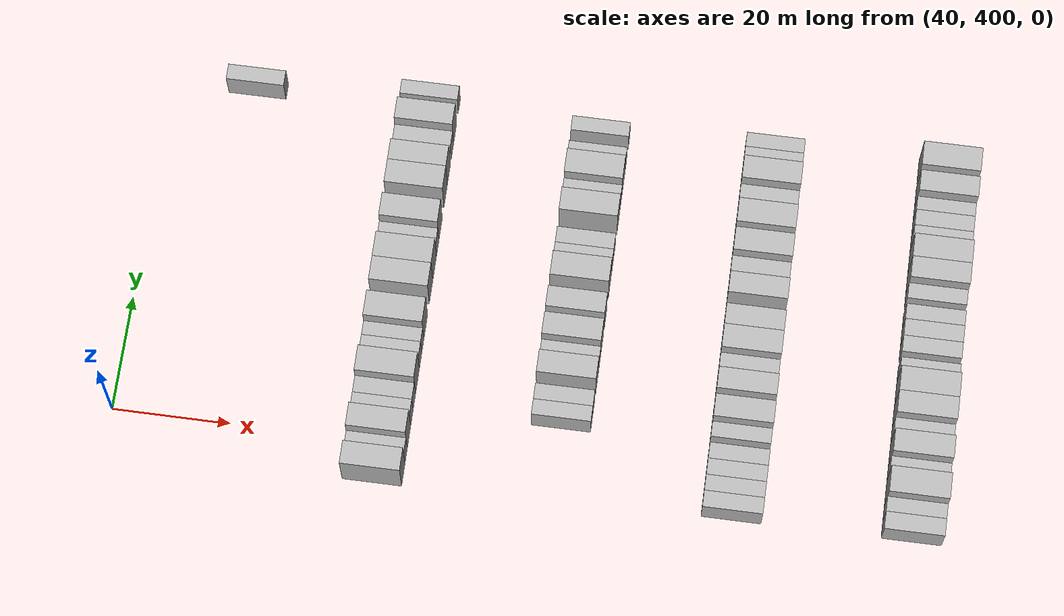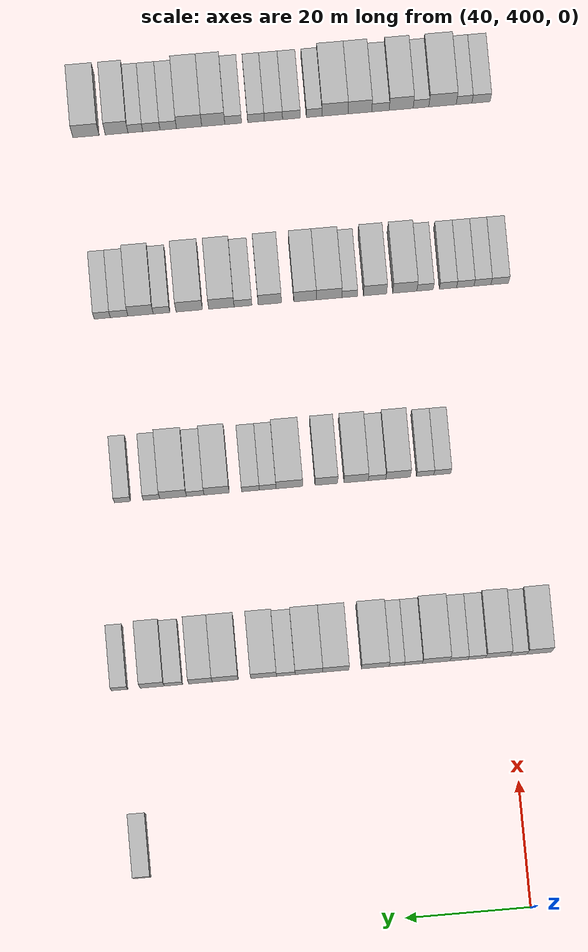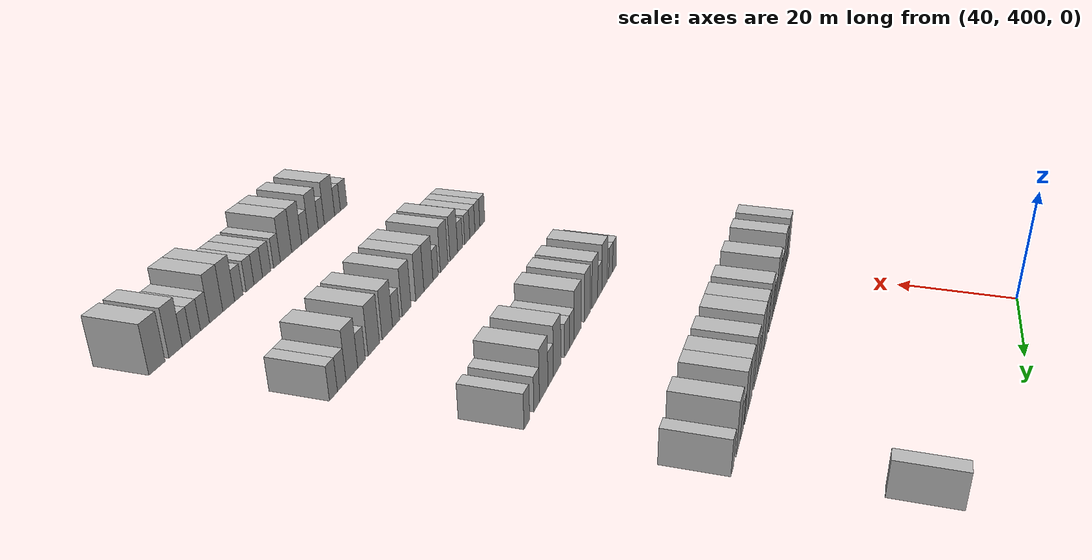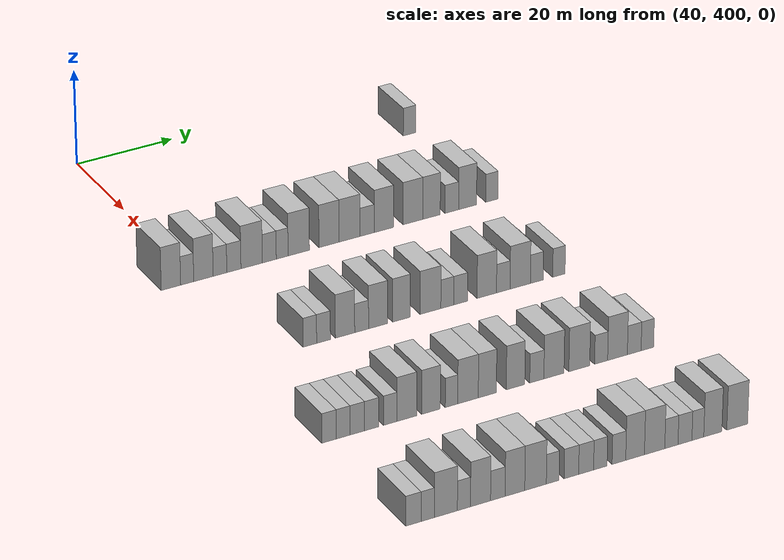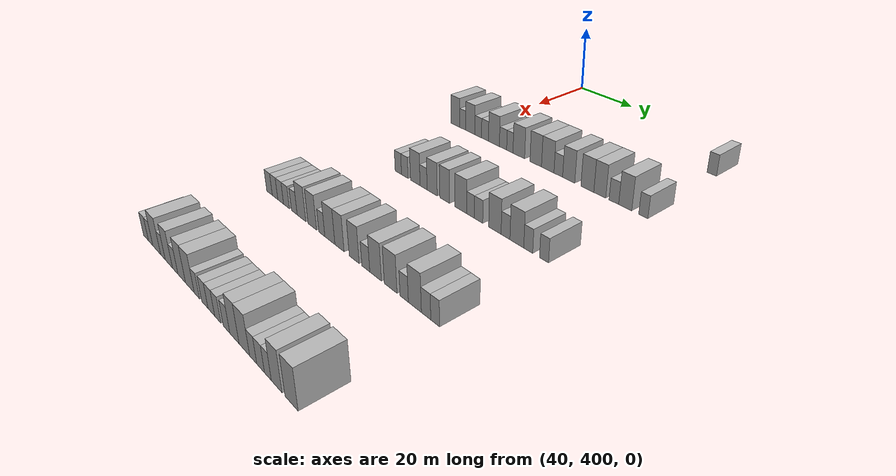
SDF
<sdf version="1.6">
 <world name="default">
  <model name="building_453">
   <static>1</static>
   <pose>55.0000 460.8837 0 0.000000 0.000000 0.000000</pose>
   <link name="link">
    <pose>0 0 3.00 0 0 0</pose>
    <collision name="collision"><geometry><box><size>10.0000 2.7528 6.0000</size></box></geometry></collision>
    <visual name="visual">
     <cast_shadows>0</cast_shadows>
     <geometry><box><size>10.0000 2.7528 6.0000</size></box></geometry>
     <material>
      <script>
       <uri>model://HANNAS_wall/materials/scripts</uri>
       <uri>model://HANNAS_wall/materials/textures</uri>
       <name>vrc/HANNAS_wall</name>
      </script>
     </material>
    </visual>
   </link>
  </model>
  <model name="building_653">
   <static>1</static>
   <pose>85.0000 394.8878 0 0.000000 0.000000 0.000000</pose>
   <link name="link">
    <pose>0 0 4.50 0 0 0</pose>
    <collision name="collision"><geometry><box><size>10.0000 3.9423 9.0000</size></box></geometry></collision>
    <visual name="visual">
     <cast_shadows>0</cast_shadows>
     <geometry><box><size>10.0000 3.9423 9.0000</size></box></geometry>
     <material>
      <script>
       <uri>model://HANNAS_wall/materials/scripts</uri>
       <uri>model://HANNAS_wall/materials/textures</uri>
       <name>vrc/HANNAS_wall</name>
      </script>
     </material>
    </visual>
   </link>
  </model>
  <model name="building_654">
   <static>1</static>
   <pose>85.0000 398.1920 0 0.000000 0.000000 0.000000</pose>
   <link name="link">
    <pose>0 0 3.00 0 0 0</pose>
    <collision name="collision"><geometry><box><size>10.0000 2.6660 6.0000</size></box></geometry></collision>
    <visual name="visual">
     <cast_shadows>0</cast_shadows>
     <geometry><box><size>10.0000 2.6660 6.0000</size></box></geometry>
     <material>
      <script>
       <uri>model://HANNAS_wall/materials/scripts</uri>
       <uri>model://HANNAS_wall/materials/textures</uri>
       <name>vrc/HANNAS_wall</name>
      </script>
     </material>
    </visual>
   </link>
  </model>
  <model name="building_655">
   <static>1</static>
   <pose>85.0000 401.5129 0 0.000000 0.000000 0.000000</pose>
   <link name="link">
    <pose>0 0 4.50 0 0 0</pose>
    <collision name="collision"><geometry><box><size>10.0000 3.9759 9.0000</size></box></geometry></collision>
    <visual name="visual">
     <cast_shadows>0</cast_shadows>
     <geometry><box><size>10.0000 3.9759 9.0000</size></box></geometry>
     <material>
      <script>
       <uri>model://HANNAS_wall/materials/scripts</uri>
       <uri>model://HANNAS_wall/materials/textures</uri>
       <name>vrc/HANNAS_wall</name>
      </script>
     </material>
    </visual>
   </link>
  </model>
  <model name="building_656">
   <static>1</static>
   <pose>85.0000 404.8990 0 0.000000 0.000000 0.000000</pose>
   <link name="link">
    <pose>0 0 3.00 0 0 0</pose>
    <collision name="collision"><geometry><box><size>10.0000 2.7963 6.0000</size></box></geometry></collision>
    <visual name="visual">
     <cast_shadows>0</cast_shadows>
     <geometry><box><size>10.0000 2.7963 6.0000</size></box></geometry>
     <material>
      <script>
       <uri>model://HANNAS_wall/materials/scripts</uri>
       <uri>model://HANNAS_wall/materials/textures</uri>
       <name>vrc/HANNAS_wall</name>
      </script>
     </material>
    </visual>
   </link>
  </model>
  <model name="building_657">
   <static>1</static>
   <pose>85.0000 407.7478 0 0.000000 0.000000 0.000000</pose>
   <link name="link">
    <pose>0 0 3.00 0 0 0</pose>
    <collision name="collision"><geometry><box><size>10.0000 2.9014 6.0000</size></box></geometry></collision>
    <visual name="visual">
     <cast_shadows>0</cast_shadows>
     <geometry><box><size>10.0000 2.9014 6.0000</size></box></geometry>
     <material>
      <script>
       <uri>model://HANNAS_wall/materials/scripts</uri>
       <uri>model://HANNAS_wall/materials/textures</uri>
       <name>vrc/HANNAS_wall</name>
      </script>
     </material>
    </visual>
   </link>
  </model>
  <model name="building_658">
   <static>1</static>
   <pose>85.0000 411.4063 0 0.000000 0.000000 0.000000</pose>
   <link name="link">
    <pose>0 0 4.50 0 0 0</pose>
    <collision name="collision"><geometry><box><size>10.0000 4.4156 9.0000</size></box></geometry></collision>
    <visual name="visual">
     <cast_shadows>0</cast_shadows>
     <geometry><box><size>10.0000 4.4156 9.0000</size></box></geometry>
     <material>
      <script>
       <uri>model://HANNAS_wall/materials/scripts</uri>
       <uri>model://HANNAS_wall/materials/textures</uri>
       <name>vrc/HANNAS_wall</name>
      </script>
     </material>
    </visual>
   </link>
  </model>
  <model name="building_659">
   <static>1</static>
   <pose>85.0000 415.0529 0 0.000000 0.000000 0.000000</pose>
   <link name="link">
    <pose>0 0 3.00 0 0 0</pose>
    <collision name="collision"><geometry><box><size>10.0000 2.8777 6.0000</size></box></geometry></collision>
    <visual name="visual">
     <cast_shadows>0</cast_shadows>
     <geometry><box><size>10.0000 2.8777 6.0000</size></box></geometry>
     <material>
      <script>
       <uri>model://HANNAS_wall/materials/scripts</uri>
       <uri>model://HANNAS_wall/materials/textures</uri>
       <name>vrc/HANNAS_wall</name>
      </script>
     </material>
    </visual>
   </link>
  </model>
  <model name="building_660">
   <static>1</static>
   <pose>85.0000 417.7187 0 0.000000 0.000000 0.000000</pose>
   <link name="link">
    <pose>0 0 3.00 0 0 0</pose>
    <collision name="collision"><geometry><box><size>10.0000 2.4538 6.0000</size></box></geometry></collision>
    <visual name="visual">
     <cast_shadows>0</cast_shadows>
     <geometry><box><size>10.0000 2.4538 6.0000</size></box></geometry>
     <material>
      <script>
       <uri>model://HANNAS_wall/materials/scripts</uri>
       <uri>model://HANNAS_wall/materials/textures</uri>
       <name>vrc/HANNAS_wall</name>
      </script>
     </material>
    </visual>
   </link>
  </model>
  <model name="building_661">
   <static>1</static>
   <pose>85.0000 421.1607 0 0.000000 0.000000 0.000000</pose>
   <link name="link">
    <pose>0 0 4.50 0 0 0</pose>
    <collision name="collision"><geometry><box><size>10.0000 4.4301 9.0000</size></box></geometry></collision>
    <visual name="visual">
     <cast_shadows>0</cast_shadows>
     <geometry><box><size>10.0000 4.4301 9.0000</size></box></geometry>
     <material>
      <script>
       <uri>model://HANNAS_wall/materials/scripts</uri>
       <uri>model://HANNAS_wall/materials/textures</uri>
       <name>vrc/HANNAS_wall</name>
      </script>
     </material>
    </visual>
   </link>
  </model>
  <model name="building_662">
   <static>1</static>
   <pose>85.0000 427.4719 0 0.000000 0.000000 0.000000</pose>
   <link name="link">
    <pose>0 0 4.50 0 0 0</pose>
    <collision name="collision"><geometry><box><size>10.0000 4.1924 9.0000</size></box></geometry></collision>
    <visual name="visual">
     <cast_shadows>0</cast_shadows>
     <geometry><box><size>10.0000 4.1924 9.0000</size></box></geometry>
     <material>
      <script>
       <uri>model://HANNAS_wall/materials/scripts</uri>
       <uri>model://HANNAS_wall/materials/textures</uri>
       <name>vrc/HANNAS_wall</name>
      </script>
     </material>
    </visual>
   </link>
  </model>
  <model name="building_663">
   <static>1</static>
   <pose>85.0000 431.7773 0 0.000000 0.000000 0.000000</pose>
   <link name="link">
    <pose>0 0 4.50 0 0 0</pose>
    <collision name="collision"><geometry><box><size>10.0000 4.4183 9.0000</size></box></geometry></collision>
    <visual name="visual">
     <cast_shadows>0</cast_shadows>
     <geometry><box><size>10.0000 4.4183 9.0000</size></box></geometry>
     <material>
      <script>
       <uri>model://HANNAS_wall/materials/scripts</uri>
       <uri>model://HANNAS_wall/materials/textures</uri>
       <name>vrc/HANNAS_wall</name>
      </script>
     </material>
    </visual>
   </link>
  </model>
  <model name="building_664">
   <static>1</static>
   <pose>85.0000 435.4705 0 0.000000 0.000000 0.000000</pose>
   <link name="link">
    <pose>0 0 3.00 0 0 0</pose>
    <collision name="collision"><geometry><box><size>10.0000 2.9681 6.0000</size></box></geometry></collision>
    <visual name="visual">
     <cast_shadows>0</cast_shadows>
     <geometry><box><size>10.0000 2.9681 6.0000</size></box></geometry>
     <material>
      <script>
       <uri>model://HANNAS_wall/materials/scripts</uri>
       <uri>model://HANNAS_wall/materials/textures</uri>
       <name>vrc/HANNAS_wall</name>
      </script>
     </material>
    </visual>
   </link>
  </model>
  <model name="building_665">
   <static>1</static>
   <pose>85.0000 439.0048 0 0.000000 0.000000 0.000000</pose>
   <link name="link">
    <pose>0 0 4.50 0 0 0</pose>
    <collision name="collision"><geometry><box><size>10.0000 4.1005 9.0000</size></box></geometry></collision>
    <visual name="visual">
     <cast_shadows>0</cast_shadows>
     <geometry><box><size>10.0000 4.1005 9.0000</size></box></geometry>
     <material>
      <script>
       <uri>model://HANNAS_wall/materials/scripts</uri>
       <uri>model://HANNAS_wall/materials/textures</uri>
       <name>vrc/HANNAS_wall</name>
      </script>
     </material>
    </visual>
   </link>
  </model>
  <model name="building_666">
   <static>1</static>
   <pose>85.0000 445.1371 0 0.000000 0.000000 0.000000</pose>
   <link name="link">
    <pose>0 0 4.50 0 0 0</pose>
    <collision name="collision"><geometry><box><size>10.0000 4.1641 9.0000</size></box></geometry></collision>
    <visual name="visual">
     <cast_shadows>0</cast_shadows>
     <geometry><box><size>10.0000 4.1641 9.0000</size></box></geometry>
     <material>
      <script>
       <uri>model://HANNAS_wall/materials/scripts</uri>
       <uri>model://HANNAS_wall/materials/textures</uri>
       <name>vrc/HANNAS_wall</name>
      </script>
     </material>
    </visual>
   </link>
  </model>
  <model name="building_667">
   <static>1</static>
   <pose>85.0000 449.0859 0 0.000000 0.000000 0.000000</pose>
   <link name="link">
    <pose>0 0 4.50 0 0 0</pose>
    <collision name="collision"><geometry><box><size>10.0000 3.7334 9.0000</size></box></geometry></collision>
    <visual name="visual">
     <cast_shadows>0</cast_shadows>
     <geometry><box><size>10.0000 3.7334 9.0000</size></box></geometry>
     <material>
      <script>
       <uri>model://HANNAS_wall/materials/scripts</uri>
       <uri>model://HANNAS_wall/materials/textures</uri>
       <name>vrc/HANNAS_wall</name>
      </script>
     </material>
    </visual>
   </link>
  </model>
  <model name="building_668">
   <static>1</static>
   <pose>85.0000 453.4072 0 0.000000 0.000000 0.000000</pose>
   <link name="link">
    <pose>0 0 3.00 0 0 0</pose>
    <collision name="collision"><geometry><box><size>10.0000 2.9094 6.0000</size></box></geometry></collision>
    <visual name="visual">
     <cast_shadows>0</cast_shadows>
     <geometry><box><size>10.0000 2.9094 6.0000</size></box></geometry>
     <material>
      <script>
       <uri>model://HANNAS_wall/materials/scripts</uri>
       <uri>model://HANNAS_wall/materials/textures</uri>
       <name>vrc/HANNAS_wall</name>
      </script>
     </material>
    </visual>
   </link>
  </model>
  <model name="building_669">
   <static>1</static>
   <pose>85.0000 456.7926 0 0.000000 0.000000 0.000000</pose>
   <link name="link">
    <pose>0 0 4.50 0 0 0</pose>
    <collision name="collision"><geometry><box><size>10.0000 3.8614 9.0000</size></box></geometry></collision>
    <visual name="visual">
     <cast_shadows>0</cast_shadows>
     <geometry><box><size>10.0000 3.8614 9.0000</size></box></geometry>
     <material>
      <script>
       <uri>model://HANNAS_wall/materials/scripts</uri>
       <uri>model://HANNAS_wall/materials/textures</uri>
       <name>vrc/HANNAS_wall</name>
      </script>
     </material>
    </visual>
   </link>
  </model>
  <model name="building_670">
   <static>1</static>
   <pose>85.0000 462.0201 0 0.000000 0.000000 0.000000</pose>
   <link name="link">
    <pose>0 0 3.00 0 0 0</pose>
    <collision name="collision"><geometry><box><size>10.0000 2.5936 6.0000</size></box></geometry></collision>
    <visual name="visual">
     <cast_shadows>0</cast_shadows>
     <geometry><box><size>10.0000 2.5936 6.0000</size></box></geometry>
     <material>
      <script>
       <uri>model://HANNAS_wall/materials/scripts</uri>
       <uri>model://HANNAS_wall/materials/textures</uri>
       <name>vrc/HANNAS_wall</name>
      </script>
     </material>
    </visual>
   </link>
  </model>
  <model name="building_879">
   <static>1</static>
   <pose>115.0000 407.6652 0 0.000000 0.000000 0.000000</pose>
   <link name="link">
    <pose>0 0 3.00 0 0 0</pose>
    <collision name="collision"><geometry><box><size>10.0000 2.7222 6.0000</size></box></geometry></collision>
    <visual name="visual">
     <cast_shadows>0</cast_shadows>
     <geometry><box><size>10.0000 2.7222 6.0000</size></box></geometry>
     <material>
      <script>
       <uri>model://HANNAS_wall/materials/scripts</uri>
       <uri>model://HANNAS_wall/materials/textures</uri>
       <name>vrc/HANNAS_wall</name>
      </script>
     </material>
    </visual>
   </link>
  </model>
  <model name="building_880">
   <static>1</static>
   <pose>115.0000 410.4216 0 0.000000 0.000000 0.000000</pose>
   <link name="link">
    <pose>0 0 3.00 0 0 0</pose>
    <collision name="collision"><geometry><box><size>10.0000 2.7905 6.0000</size></box></geometry></collision>
    <visual name="visual">
     <cast_shadows>0</cast_shadows>
     <geometry><box><size>10.0000 2.7905 6.0000</size></box></geometry>
     <material>
      <script>
       <uri>model://HANNAS_wall/materials/scripts</uri>
       <uri>model://HANNAS_wall/materials/textures</uri>
       <name>vrc/HANNAS_wall</name>
      </script>
     </material>
    </visual>
   </link>
  </model>
  <model name="building_881">
   <static>1</static>
   <pose>115.0000 414.7831 0 0.000000 0.000000 0.000000</pose>
   <link name="link">
    <pose>0 0 4.50 0 0 0</pose>
    <collision name="collision"><geometry><box><size>10.0000 3.9324 9.0000</size></box></geometry></collision>
    <visual name="visual">
     <cast_shadows>0</cast_shadows>
     <geometry><box><size>10.0000 3.9324 9.0000</size></box></geometry>
     <material>
      <script>
       <uri>model://HANNAS_wall/materials/scripts</uri>
       <uri>model://HANNAS_wall/materials/textures</uri>
       <name>vrc/HANNAS_wall</name>
      </script>
     </material>
    </visual>
   </link>
  </model>
  <model name="building_882">
   <static>1</static>
   <pose>115.0000 418.1613 0 0.000000 0.000000 0.000000</pose>
   <link name="link">
    <pose>0 0 3.00 0 0 0</pose>
    <collision name="collision"><geometry><box><size>10.0000 2.8240 6.0000</size></box></geometry></collision>
    <visual name="visual">
     <cast_shadows>0</cast_shadows>
     <geometry><box><size>10.0000 2.8240 6.0000</size></box></geometry>
     <material>
      <script>
       <uri>model://HANNAS_wall/materials/scripts</uri>
       <uri>model://HANNAS_wall/materials/textures</uri>
       <name>vrc/HANNAS_wall</name>
      </script>
     </material>
    </visual>
   </link>
  </model>
  <model name="building_883">
   <static>1</static>
   <pose>115.0000 421.5358 0 0.000000 0.000000 0.000000</pose>
   <link name="link">
    <pose>0 0 4.50 0 0 0</pose>
    <collision name="collision"><geometry><box><size>10.0000 3.9251 9.0000</size></box></geometry></collision>
    <visual name="visual">
     <cast_shadows>0</cast_shadows>
     <geometry><box><size>10.0000 3.9251 9.0000</size></box></geometry>
     <material>
      <script>
       <uri>model://HANNAS_wall/materials/scripts</uri>
       <uri>model://HANNAS_wall/materials/textures</uri>
       <name>vrc/HANNAS_wall</name>
      </script>
     </material>
    </visual>
   </link>
  </model>
  <model name="building_884">
   <static>1</static>
   <pose>115.0000 426.3222 0 0.000000 0.000000 0.000000</pose>
   <link name="link">
    <pose>0 0 4.50 0 0 0</pose>
    <collision name="collision"><geometry><box><size>10.0000 3.6477 9.0000</size></box></geometry></collision>
    <visual name="visual">
     <cast_shadows>0</cast_shadows>
     <geometry><box><size>10.0000 3.6477 9.0000</size></box></geometry>
     <material>
      <script>
       <uri>model://HANNAS_wall/materials/scripts</uri>
       <uri>model://HANNAS_wall/materials/textures</uri>
       <name>vrc/HANNAS_wall</name>
      </script>
     </material>
    </visual>
   </link>
  </model>
  <model name="building_885">
   <static>1</static>
   <pose>115.0000 432.2848 0 0.000000 0.000000 0.000000</pose>
   <link name="link">
    <pose>0 0 4.50 0 0 0</pose>
    <collision name="collision"><geometry><box><size>10.0000 4.2775 9.0000</size></box></geometry></collision>
    <visual name="visual">
     <cast_shadows>0</cast_shadows>
     <geometry><box><size>10.0000 4.2775 9.0000</size></box></geometry>
     <material>
      <script>
       <uri>model://HANNAS_wall/materials/scripts</uri>
       <uri>model://HANNAS_wall/materials/textures</uri>
       <name>vrc/HANNAS_wall</name>
      </script>
     </material>
    </visual>
   </link>
  </model>
  <model name="building_886">
   <static>1</static>
   <pose>115.0000 435.7615 0 0.000000 0.000000 0.000000</pose>
   <link name="link">
    <pose>0 0 3.00 0 0 0</pose>
    <collision name="collision"><geometry><box><size>10.0000 2.6759 6.0000</size></box></geometry></collision>
    <visual name="visual">
     <cast_shadows>0</cast_shadows>
     <geometry><box><size>10.0000 2.6759 6.0000</size></box></geometry>
     <material>
      <script>
       <uri>model://HANNAS_wall/materials/scripts</uri>
       <uri>model://HANNAS_wall/materials/textures</uri>
       <name>vrc/HANNAS_wall</name>
      </script>
     </material>
    </visual>
   </link>
  </model>
  <model name="building_887">
   <static>1</static>
   <pose>115.0000 438.5187 0 0.000000 0.000000 0.000000</pose>
   <link name="link">
    <pose>0 0 3.00 0 0 0</pose>
    <collision name="collision"><geometry><box><size>10.0000 2.8385 6.0000</size></box></geometry></collision>
    <visual name="visual">
     <cast_shadows>0</cast_shadows>
     <geometry><box><size>10.0000 2.8385 6.0000</size></box></geometry>
     <material>
      <script>
       <uri>model://HANNAS_wall/materials/scripts</uri>
       <uri>model://HANNAS_wall/materials/textures</uri>
       <name>vrc/HANNAS_wall</name>
      </script>
     </material>
    </visual>
   </link>
  </model>
  <model name="building_888">
   <static>1</static>
   <pose>115.0000 443.9630 0 0.000000 0.000000 0.000000</pose>
   <link name="link">
    <pose>0 0 4.50 0 0 0</pose>
    <collision name="collision"><geometry><box><size>10.0000 4.0502 9.0000</size></box></geometry></collision>
    <visual name="visual">
     <cast_shadows>0</cast_shadows>
     <geometry><box><size>10.0000 4.0502 9.0000</size></box></geometry>
     <material>
      <script>
       <uri>model://HANNAS_wall/materials/scripts</uri>
       <uri>model://HANNAS_wall/materials/textures</uri>
       <name>vrc/HANNAS_wall</name>
      </script>
     </material>
    </visual>
   </link>
  </model>
  <model name="building_889">
   <static>1</static>
   <pose>115.0000 447.4037 0 0.000000 0.000000 0.000000</pose>
   <link name="link">
    <pose>0 0 3.00 0 0 0</pose>
    <collision name="collision"><geometry><box><size>10.0000 2.8311 6.0000</size></box></geometry></collision>
    <visual name="visual">
     <cast_shadows>0</cast_shadows>
     <geometry><box><size>10.0000 2.8311 6.0000</size></box></geometry>
     <material>
      <script>
       <uri>model://HANNAS_wall/materials/scripts</uri>
       <uri>model://HANNAS_wall/materials/textures</uri>
       <name>vrc/HANNAS_wall</name>
      </script>
     </material>
    </visual>
   </link>
  </model>
  <model name="building_890">
   <static>1</static>
   <pose>115.0000 450.9556 0 0.000000 0.000000 0.000000</pose>
   <link name="link">
    <pose>0 0 4.50 0 0 0</pose>
    <collision name="collision"><geometry><box><size>10.0000 4.2727 9.0000</size></box></geometry></collision>
    <visual name="visual">
     <cast_shadows>0</cast_shadows>
     <geometry><box><size>10.0000 4.2727 9.0000</size></box></geometry>
     <material>
      <script>
       <uri>model://HANNAS_wall/materials/scripts</uri>
       <uri>model://HANNAS_wall/materials/textures</uri>
       <name>vrc/HANNAS_wall</name>
      </script>
     </material>
    </visual>
   </link>
  </model>
  <model name="building_891">
   <static>1</static>
   <pose>115.0000 454.4366 0 0.000000 0.000000 0.000000</pose>
   <link name="link">
    <pose>0 0 3.00 0 0 0</pose>
    <collision name="collision"><geometry><box><size>10.0000 2.6893 6.0000</size></box></geometry></collision>
    <visual name="visual">
     <cast_shadows>0</cast_shadows>
     <geometry><box><size>10.0000 2.6893 6.0000</size></box></geometry>
     <material>
      <script>
       <uri>model://HANNAS_wall/materials/scripts</uri>
       <uri>model://HANNAS_wall/materials/textures</uri>
       <name>vrc/HANNAS_wall</name>
      </script>
     </material>
    </visual>
   </link>
  </model>
  <model name="building_892">
   <static>1</static>
   <pose>115.0000 459.0893 0 0.000000 0.000000 0.000000</pose>
   <link name="link">
    <pose>0 0 3.00 0 0 0</pose>
    <collision name="collision"><geometry><box><size>10.0000 2.6162 6.0000</size></box></geometry></collision>
    <visual name="visual">
     <cast_shadows>0</cast_shadows>
     <geometry><box><size>10.0000 2.6162 6.0000</size></box></geometry>
     <material>
      <script>
       <uri>model://HANNAS_wall/materials/scripts</uri>
       <uri>model://HANNAS_wall/materials/textures</uri>
       <name>vrc/HANNAS_wall</name>
      </script>
     </material>
    </visual>
   </link>
  </model>
  <model name="building_1100">
   <static>1</static>
   <pose>145.0000 395.5969 0 0.000000 0.000000 0.000000</pose>
   <link name="link">
    <pose>0 0 3.00 0 0 0</pose>
    <collision name="collision"><geometry><box><size>10.0000 2.8369 6.0000</size></box></geometry></collision>
    <visual name="visual">
     <cast_shadows>0</cast_shadows>
     <geometry><box><size>10.0000 2.8369 6.0000</size></box></geometry>
     <material>
      <script>
       <uri>model://HANNAS_wall/materials/scripts</uri>
       <uri>model://HANNAS_wall/materials/textures</uri>
       <name>vrc/HANNAS_wall</name>
      </script>
     </material>
    </visual>
   </link>
  </model>
  <model name="building_1101">
   <static>1</static>
   <pose>145.0000 398.3902 0 0.000000 0.000000 0.000000</pose>
   <link name="link">
    <pose>0 0 3.00 0 0 0</pose>
    <collision name="collision"><geometry><box><size>10.0000 2.7495 6.0000</size></box></geometry></collision>
    <visual name="visual">
     <cast_shadows>0</cast_shadows>
     <geometry><box><size>10.0000 2.7495 6.0000</size></box></geometry>
     <material>
      <script>
       <uri>model://HANNAS_wall/materials/scripts</uri>
       <uri>model://HANNAS_wall/materials/textures</uri>
       <name>vrc/HANNAS_wall</name>
      </script>
     </material>
    </visual>
   </link>
  </model>
  <model name="building_1102">
   <static>1</static>
   <pose>145.0000 401.1715 0 0.000000 0.000000 0.000000</pose>
   <link name="link">
    <pose>0 0 3.00 0 0 0</pose>
    <collision name="collision"><geometry><box><size>10.0000 2.8131 6.0000</size></box></geometry></collision>
    <visual name="visual">
     <cast_shadows>0</cast_shadows>
     <geometry><box><size>10.0000 2.8131 6.0000</size></box></geometry>
     <material>
      <script>
       <uri>model://HANNAS_wall/materials/scripts</uri>
       <uri>model://HANNAS_wall/materials/textures</uri>
       <name>vrc/HANNAS_wall</name>
      </script>
     </material>
    </visual>
   </link>
  </model>
  <model name="building_1103">
   <static>1</static>
   <pose>145.0000 403.9708 0 0.000000 0.000000 0.000000</pose>
   <link name="link">
    <pose>0 0 3.00 0 0 0</pose>
    <collision name="collision"><geometry><box><size>10.0000 2.7855 6.0000</size></box></geometry></collision>
    <visual name="visual">
     <cast_shadows>0</cast_shadows>
     <geometry><box><size>10.0000 2.7855 6.0000</size></box></geometry>
     <material>
      <script>
       <uri>model://HANNAS_wall/materials/scripts</uri>
       <uri>model://HANNAS_wall/materials/textures</uri>
       <name>vrc/HANNAS_wall</name>
      </script>
     </material>
    </visual>
   </link>
  </model>
  <model name="building_1104">
   <static>1</static>
   <pose>145.0000 407.6880 0 0.000000 0.000000 0.000000</pose>
   <link name="link">
    <pose>0 0 3.00 0 0 0</pose>
    <collision name="collision"><geometry><box><size>10.0000 2.6490 6.0000</size></box></geometry></collision>
    <visual name="visual">
     <cast_shadows>0</cast_shadows>
     <geometry><box><size>10.0000 2.6490 6.0000</size></box></geometry>
     <material>
      <script>
       <uri>model://HANNAS_wall/materials/scripts</uri>
       <uri>model://HANNAS_wall/materials/textures</uri>
       <name>vrc/HANNAS_wall</name>
      </script>
     </material>
    </visual>
   </link>
  </model>
  <model name="building_1105">
   <static>1</static>
   <pose>145.0000 410.9677 0 0.000000 0.000000 0.000000</pose>
   <link name="link">
    <pose>0 0 4.50 0 0 0</pose>
    <collision name="collision"><geometry><box><size>10.0000 3.9104 9.0000</size></box></geometry></collision>
    <visual name="visual">
     <cast_shadows>0</cast_shadows>
     <geometry><box><size>10.0000 3.9104 9.0000</size></box></geometry>
     <material>
      <script>
       <uri>model://HANNAS_wall/materials/scripts</uri>
       <uri>model://HANNAS_wall/materials/textures</uri>
       <name>vrc/HANNAS_wall</name>
      </script>
     </material>
    </visual>
   </link>
  </model>
  <model name="building_1106">
   <static>1</static>
   <pose>145.0000 415.7907 0 0.000000 0.000000 0.000000</pose>
   <link name="link">
    <pose>0 0 4.50 0 0 0</pose>
    <collision name="collision"><geometry><box><size>10.0000 3.7355 9.0000</size></box></geometry></collision>
    <visual name="visual">
     <cast_shadows>0</cast_shadows>
     <geometry><box><size>10.0000 3.7355 9.0000</size></box></geometry>
     <material>
      <script>
       <uri>model://HANNAS_wall/materials/scripts</uri>
       <uri>model://HANNAS_wall/materials/textures</uri>
       <name>vrc/HANNAS_wall</name>
      </script>
     </material>
    </visual>
   </link>
  </model>
  <model name="building_1107">
   <static>1</static>
   <pose>145.0000 419.9105 0 0.000000 0.000000 0.000000</pose>
   <link name="link">
    <pose>0 0 3.00 0 0 0</pose>
    <collision name="collision"><geometry><box><size>10.0000 2.5041 6.0000</size></box></geometry></collision>
    <visual name="visual">
     <cast_shadows>0</cast_shadows>
     <geometry><box><size>10.0000 2.5041 6.0000</size></box></geometry>
     <material>
      <script>
       <uri>model://HANNAS_wall/materials/scripts</uri>
       <uri>model://HANNAS_wall/materials/textures</uri>
       <name>vrc/HANNAS_wall</name>
      </script>
     </material>
    </visual>
   </link>
  </model>
  <model name="building_1108">
   <static>1</static>
   <pose>145.0000 423.2298 0 0.000000 0.000000 0.000000</pose>
   <link name="link">
    <pose>0 0 4.50 0 0 0</pose>
    <collision name="collision"><geometry><box><size>10.0000 4.1345 9.0000</size></box></geometry></collision>
    <visual name="visual">
     <cast_shadows>0</cast_shadows>
     <geometry><box><size>10.0000 4.1345 9.0000</size></box></geometry>
     <material>
      <script>
       <uri>model://HANNAS_wall/materials/scripts</uri>
       <uri>model://HANNAS_wall/materials/textures</uri>
       <name>vrc/HANNAS_wall</name>
      </script>
     </material>
    </visual>
   </link>
  </model>
  <model name="building_1109">
   <static>1</static>
   <pose>145.0000 427.1219 0 0.000000 0.000000 0.000000</pose>
   <link name="link">
    <pose>0 0 4.50 0 0 0</pose>
    <collision name="collision"><geometry><box><size>10.0000 3.6497 9.0000</size></box></geometry></collision>
    <visual name="visual">
     <cast_shadows>0</cast_shadows>
     <geometry><box><size>10.0000 3.6497 9.0000</size></box></geometry>
     <material>
      <script>
       <uri>model://HANNAS_wall/materials/scripts</uri>
       <uri>model://HANNAS_wall/materials/textures</uri>
       <name>vrc/HANNAS_wall</name>
      </script>
     </material>
    </visual>
   </link>
  </model>
  <model name="building_1110">
   <static>1</static>
   <pose>145.0000 432.8287 0 0.000000 0.000000 0.000000</pose>
   <link name="link">
    <pose>0 0 4.50 0 0 0</pose>
    <collision name="collision"><geometry><box><size>10.0000 3.7640 9.0000</size></box></geometry></collision>
    <visual name="visual">
     <cast_shadows>0</cast_shadows>
     <geometry><box><size>10.0000 3.7640 9.0000</size></box></geometry>
     <material>
      <script>
       <uri>model://HANNAS_wall/materials/scripts</uri>
       <uri>model://HANNAS_wall/materials/textures</uri>
       <name>vrc/HANNAS_wall</name>
      </script>
     </material>
    </visual>
   </link>
  </model>
  <model name="building_1111">
   <static>1</static>
   <pose>145.0000 437.1565 0 0.000000 0.000000 0.000000</pose>
   <link name="link">
    <pose>0 0 3.00 0 0 0</pose>
    <collision name="collision"><geometry><box><size>10.0000 2.8915 6.0000</size></box></geometry></collision>
    <visual name="visual">
     <cast_shadows>0</cast_shadows>
     <geometry><box><size>10.0000 2.8915 6.0000</size></box></geometry>
     <material>
      <script>
       <uri>model://HANNAS_wall/materials/scripts</uri>
       <uri>model://HANNAS_wall/materials/textures</uri>
       <name>vrc/HANNAS_wall</name>
      </script>
     </material>
    </visual>
   </link>
  </model>
  <model name="building_1112">
   <static>1</static>
   <pose>145.0000 440.6560 0 0.000000 0.000000 0.000000</pose>
   <link name="link">
    <pose>0 0 4.50 0 0 0</pose>
    <collision name="collision"><geometry><box><size>10.0000 4.1076 9.0000</size></box></geometry></collision>
    <visual name="visual">
     <cast_shadows>0</cast_shadows>
     <geometry><box><size>10.0000 4.1076 9.0000</size></box></geometry>
     <material>
      <script>
       <uri>model://HANNAS_wall/materials/scripts</uri>
       <uri>model://HANNAS_wall/materials/textures</uri>
       <name>vrc/HANNAS_wall</name>
      </script>
     </material>
    </visual>
   </link>
  </model>
  <model name="building_1113">
   <static>1</static>
   <pose>145.0000 445.8509 0 0.000000 0.000000 0.000000</pose>
   <link name="link">
    <pose>0 0 4.50 0 0 0</pose>
    <collision name="collision"><geometry><box><size>10.0000 4.2822 9.0000</size></box></geometry></collision>
    <visual name="visual">
     <cast_shadows>0</cast_shadows>
     <geometry><box><size>10.0000 4.2822 9.0000</size></box></geometry>
     <material>
      <script>
       <uri>model://HANNAS_wall/materials/scripts</uri>
       <uri>model://HANNAS_wall/materials/textures</uri>
       <name>vrc/HANNAS_wall</name>
      </script>
     </material>
    </visual>
   </link>
  </model>
  <model name="building_1114">
   <static>1</static>
   <pose>145.0000 450.3405 0 0.000000 0.000000 0.000000</pose>
   <link name="link">
    <pose>0 0 3.00 0 0 0</pose>
    <collision name="collision"><geometry><box><size>10.0000 2.6971 6.0000</size></box></geometry></collision>
    <visual name="visual">
     <cast_shadows>0</cast_shadows>
     <geometry><box><size>10.0000 2.6971 6.0000</size></box></geometry>
     <material>
      <script>
       <uri>model://HANNAS_wall/materials/scripts</uri>
       <uri>model://HANNAS_wall/materials/textures</uri>
       <name>vrc/HANNAS_wall</name>
      </script>
     </material>
    </visual>
   </link>
  </model>
  <model name="building_1115">
   <static>1</static>
   <pose>145.0000 453.7285 0 0.000000 0.000000 0.000000</pose>
   <link name="link">
    <pose>0 0 4.50 0 0 0</pose>
    <collision name="collision"><geometry><box><size>10.0000 4.0788 9.0000</size></box></geometry></collision>
    <visual name="visual">
     <cast_shadows>0</cast_shadows>
     <geometry><box><size>10.0000 4.0788 9.0000</size></box></geometry>
     <material>
      <script>
       <uri>model://HANNAS_wall/materials/scripts</uri>
       <uri>model://HANNAS_wall/materials/textures</uri>
       <name>vrc/HANNAS_wall</name>
      </script>
     </material>
    </visual>
   </link>
  </model>
  <model name="building_1116">
   <static>1</static>
   <pose>145.0000 457.1945 0 0.000000 0.000000 0.000000</pose>
   <link name="link">
    <pose>0 0 3.00 0 0 0</pose>
    <collision name="collision"><geometry><box><size>10.0000 2.8532 6.0000</size></box></geometry></collision>
    <visual name="visual">
     <cast_shadows>0</cast_shadows>
     <geometry><box><size>10.0000 2.8532 6.0000</size></box></geometry>
     <material>
      <script>
       <uri>model://HANNAS_wall/materials/scripts</uri>
       <uri>model://HANNAS_wall/materials/textures</uri>
       <name>vrc/HANNAS_wall</name>
      </script>
     </material>
    </visual>
   </link>
  </model>
  <model name="building_1117">
   <static>1</static>
   <pose>145.0000 459.9251 0 0.000000 0.000000 0.000000</pose>
   <link name="link">
    <pose>0 0 3.00 0 0 0</pose>
    <collision name="collision"><geometry><box><size>10.0000 2.6081 6.0000</size></box></geometry></collision>
    <visual name="visual">
     <cast_shadows>0</cast_shadows>
     <geometry><box><size>10.0000 2.6081 6.0000</size></box></geometry>
     <material>
      <script>
       <uri>model://HANNAS_wall/materials/scripts</uri>
       <uri>model://HANNAS_wall/materials/textures</uri>
       <name>vrc/HANNAS_wall</name>
      </script>
     </material>
    </visual>
   </link>
  </model>
  <model name="building_1328">
   <static>1</static>
   <pose>175.0000 395.8180 0 0.000000 0.000000 0.000000</pose>
   <link name="link">
    <pose>0 0 3.00 0 0 0</pose>
    <collision name="collision"><geometry><box><size>10.0000 2.9766 6.0000</size></box></geometry></collision>
    <visual name="visual">
     <cast_shadows>0</cast_shadows>
     <geometry><box><size>10.0000 2.9766 6.0000</size></box></geometry>
     <material>
      <script>
       <uri>model://HANNAS_wall/materials/scripts</uri>
       <uri>model://HANNAS_wall/materials/textures</uri>
       <name>vrc/HANNAS_wall</name>
      </script>
     </material>
    </visual>
   </link>
  </model>
  <model name="building_1329">
   <static>1</static>
   <pose>175.0000 398.5824 0 0.000000 0.000000 0.000000</pose>
   <link name="link">
    <pose>0 0 3.00 0 0 0</pose>
    <collision name="collision"><geometry><box><size>10.0000 2.5521 6.0000</size></box></geometry></collision>
    <visual name="visual">
     <cast_shadows>0</cast_shadows>
     <geometry><box><size>10.0000 2.5521 6.0000</size></box></geometry>
     <material>
      <script>
       <uri>model://HANNAS_wall/materials/scripts</uri>
       <uri>model://HANNAS_wall/materials/textures</uri>
       <name>vrc/HANNAS_wall</name>
      </script>
     </material>
    </visual>
   </link>
  </model>
  <model name="building_1330">
   <static>1</static>
   <pose>175.0000 402.0932 0 0.000000 0.000000 0.000000</pose>
   <link name="link">
    <pose>0 0 4.50 0 0 0</pose>
    <collision name="collision"><geometry><box><size>10.0000 4.4695 9.0000</size></box></geometry></collision>
    <visual name="visual">
     <cast_shadows>0</cast_shadows>
     <geometry><box><size>10.0000 4.4695 9.0000</size></box></geometry>
     <material>
      <script>
       <uri>model://HANNAS_wall/materials/scripts</uri>
       <uri>model://HANNAS_wall/materials/textures</uri>
       <name>vrc/HANNAS_wall</name>
      </script>
     </material>
    </visual>
   </link>
  </model>
  <model name="building_1331">
   <static>1</static>
   <pose>175.0000 405.6017 0 0.000000 0.000000 0.000000</pose>
   <link name="link">
    <pose>0 0 3.00 0 0 0</pose>
    <collision name="collision"><geometry><box><size>10.0000 2.5476 6.0000</size></box></geometry></collision>
    <visual name="visual">
     <cast_shadows>0</cast_shadows>
     <geometry><box><size>10.0000 2.5476 6.0000</size></box></geometry>
     <material>
      <script>
       <uri>model://HANNAS_wall/materials/scripts</uri>
       <uri>model://HANNAS_wall/materials/textures</uri>
       <name>vrc/HANNAS_wall</name>
      </script>
     </material>
    </visual>
   </link>
  </model>
  <model name="building_1332">
   <static>1</static>
   <pose>175.0000 408.8342 0 0.000000 0.000000 0.000000</pose>
   <link name="link">
    <pose>0 0 4.50 0 0 0</pose>
    <collision name="collision"><geometry><box><size>10.0000 3.9174 9.0000</size></box></geometry></collision>
    <visual name="visual">
     <cast_shadows>0</cast_shadows>
     <geometry><box><size>10.0000 3.9174 9.0000</size></box></geometry>
     <material>
      <script>
       <uri>model://HANNAS_wall/materials/scripts</uri>
       <uri>model://HANNAS_wall/materials/textures</uri>
       <name>vrc/HANNAS_wall</name>
      </script>
     </material>
    </visual>
   </link>
  </model>
  <model name="building_1333">
   <static>1</static>
   <pose>175.0000 412.2154 0 0.000000 0.000000 0.000000</pose>
   <link name="link">
    <pose>0 0 3.00 0 0 0</pose>
    <collision name="collision"><geometry><box><size>10.0000 2.8452 6.0000</size></box></geometry></collision>
    <visual name="visual">
     <cast_shadows>0</cast_shadows>
     <geometry><box><size>10.0000 2.8452 6.0000</size></box></geometry>
     <material>
      <script>
       <uri>model://HANNAS_wall/materials/scripts</uri>
       <uri>model://HANNAS_wall/materials/textures</uri>
       <name>vrc/HANNAS_wall</name>
      </script>
     </material>
    </visual>
   </link>
  </model>
  <model name="building_1334">
   <static>1</static>
   <pose>175.0000 415.5689 0 0.000000 0.000000 0.000000</pose>
   <link name="link">
    <pose>0 0 4.50 0 0 0</pose>
    <collision name="collision"><geometry><box><size>10.0000 3.8617 9.0000</size></box></geometry></collision>
    <visual name="visual">
     <cast_shadows>0</cast_shadows>
     <geometry><box><size>10.0000 3.8617 9.0000</size></box></geometry>
     <material>
      <script>
       <uri>model://HANNAS_wall/materials/scripts</uri>
       <uri>model://HANNAS_wall/materials/textures</uri>
       <name>vrc/HANNAS_wall</name>
      </script>
     </material>
    </visual>
   </link>
  </model>
  <model name="building_1335">
   <static>1</static>
   <pose>175.0000 419.6284 0 0.000000 0.000000 0.000000</pose>
   <link name="link">
    <pose>0 0 4.50 0 0 0</pose>
    <collision name="collision"><geometry><box><size>10.0000 4.2573 9.0000</size></box></geometry></collision>
    <visual name="visual">
     <cast_shadows>0</cast_shadows>
     <geometry><box><size>10.0000 4.2573 9.0000</size></box></geometry>
     <material>
      <script>
       <uri>model://HANNAS_wall/materials/scripts</uri>
       <uri>model://HANNAS_wall/materials/textures</uri>
       <name>vrc/HANNAS_wall</name>
      </script>
     </material>
    </visual>
   </link>
  </model>
  <model name="building_1336">
   <static>1</static>
   <pose>175.0000 423.0157 0 0.000000 0.000000 0.000000</pose>
   <link name="link">
    <pose>0 0 3.00 0 0 0</pose>
    <collision name="collision"><geometry><box><size>10.0000 2.5172 6.0000</size></box></geometry></collision>
    <visual name="visual">
     <cast_shadows>0</cast_shadows>
     <geometry><box><size>10.0000 2.5172 6.0000</size></box></geometry>
     <material>
      <script>
       <uri>model://HANNAS_wall/materials/scripts</uri>
       <uri>model://HANNAS_wall/materials/textures</uri>
       <name>vrc/HANNAS_wall</name>
      </script>
     </material>
    </visual>
   </link>
  </model>
  <model name="building_1337">
   <static>1</static>
   <pose>175.0000 426.7167 0 0.000000 0.000000 0.000000</pose>
   <link name="link">
    <pose>0 0 3.00 0 0 0</pose>
    <collision name="collision"><geometry><box><size>10.0000 2.8850 6.0000</size></box></geometry></collision>
    <visual name="visual">
     <cast_shadows>0</cast_shadows>
     <geometry><box><size>10.0000 2.8850 6.0000</size></box></geometry>
     <material>
      <script>
       <uri>model://HANNAS_wall/materials/scripts</uri>
       <uri>model://HANNAS_wall/materials/textures</uri>
       <name>vrc/HANNAS_wall</name>
      </script>
     </material>
    </visual>
   </link>
  </model>
  <model name="building_1338">
   <static>1</static>
   <pose>175.0000 429.6450 0 0.000000 0.000000 0.000000</pose>
   <link name="link">
    <pose>0 0 3.00 0 0 0</pose>
    <collision name="collision"><geometry><box><size>10.0000 2.9716 6.0000</size></box></geometry></collision>
    <visual name="visual">
     <cast_shadows>0</cast_shadows>
     <geometry><box><size>10.0000 2.9716 6.0000</size></box></geometry>
     <material>
      <script>
       <uri>model://HANNAS_wall/materials/scripts</uri>
       <uri>model://HANNAS_wall/materials/textures</uri>
       <name>vrc/HANNAS_wall</name>
      </script>
     </material>
    </visual>
   </link>
  </model>
  <model name="building_1339">
   <static>1</static>
   <pose>175.0000 432.4767 0 0.000000 0.000000 0.000000</pose>
   <link name="link">
    <pose>0 0 3.00 0 0 0</pose>
    <collision name="collision"><geometry><box><size>10.0000 2.6918 6.0000</size></box></geometry></collision>
    <visual name="visual">
     <cast_shadows>0</cast_shadows>
     <geometry><box><size>10.0000 2.6918 6.0000</size></box></geometry>
     <material>
      <script>
       <uri>model://HANNAS_wall/materials/scripts</uri>
       <uri>model://HANNAS_wall/materials/textures</uri>
       <name>vrc/HANNAS_wall</name>
      </script>
     </material>
    </visual>
   </link>
  </model>
  <model name="building_1340">
   <static>1</static>
   <pose>175.0000 436.1904 0 0.000000 0.000000 0.000000</pose>
   <link name="link">
    <pose>0 0 3.00 0 0 0</pose>
    <collision name="collision"><geometry><box><size>10.0000 2.7355 6.0000</size></box></geometry></collision>
    <visual name="visual">
     <cast_shadows>0</cast_shadows>
     <geometry><box><size>10.0000 2.7355 6.0000</size></box></geometry>
     <material>
      <script>
       <uri>model://HANNAS_wall/materials/scripts</uri>
       <uri>model://HANNAS_wall/materials/textures</uri>
       <name>vrc/HANNAS_wall</name>
      </script>
     </material>
    </visual>
   </link>
  </model>
  <model name="building_1341">
   <static>1</static>
   <pose>175.0000 439.4339 0 0.000000 0.000000 0.000000</pose>
   <link name="link">
    <pose>0 0 4.50 0 0 0</pose>
    <collision name="collision"><geometry><box><size>10.0000 3.7516 9.0000</size></box></geometry></collision>
    <visual name="visual">
     <cast_shadows>0</cast_shadows>
     <geometry><box><size>10.0000 3.7516 9.0000</size></box></geometry>
     <material>
      <script>
       <uri>model://HANNAS_wall/materials/scripts</uri>
       <uri>model://HANNAS_wall/materials/textures</uri>
       <name>vrc/HANNAS_wall</name>
      </script>
     </material>
    </visual>
   </link>
  </model>
  <model name="building_1342">
   <static>1</static>
   <pose>175.0000 443.3629 0 0.000000 0.000000 0.000000</pose>
   <link name="link">
    <pose>0 0 4.50 0 0 0</pose>
    <collision name="collision"><geometry><box><size>10.0000 4.1062 9.0000</size></box></geometry></collision>
    <visual name="visual">
     <cast_shadows>0</cast_shadows>
     <geometry><box><size>10.0000 4.1062 9.0000</size></box></geometry>
     <material>
      <script>
       <uri>model://HANNAS_wall/materials/scripts</uri>
       <uri>model://HANNAS_wall/materials/textures</uri>
       <name>vrc/HANNAS_wall</name>
      </script>
     </material>
    </visual>
   </link>
  </model>
  <model name="building_1343">
   <static>1</static>
   <pose>175.0000 446.7526 0 0.000000 0.000000 0.000000</pose>
   <link name="link">
    <pose>0 0 3.00 0 0 0</pose>
    <collision name="collision"><geometry><box><size>10.0000 2.6733 6.0000</size></box></geometry></collision>
    <visual name="visual">
     <cast_shadows>0</cast_shadows>
     <geometry><box><size>10.0000 2.6733 6.0000</size></box></geometry>
     <material>
      <script>
       <uri>model://HANNAS_wall/materials/scripts</uri>
       <uri>model://HANNAS_wall/materials/textures</uri>
       <name>vrc/HANNAS_wall</name>
      </script>
     </material>
    </visual>
   </link>
  </model>
  <model name="building_1344">
   <static>1</static>
   <pose>175.0000 449.5009 0 0.000000 0.000000 0.000000</pose>
   <link name="link">
    <pose>0 0 3.00 0 0 0</pose>
    <collision name="collision"><geometry><box><size>10.0000 2.8231 6.0000</size></box></geometry></collision>
    <visual name="visual">
     <cast_shadows>0</cast_shadows>
     <geometry><box><size>10.0000 2.8231 6.0000</size></box></geometry>
     <material>
      <script>
       <uri>model://HANNAS_wall/materials/scripts</uri>
       <uri>model://HANNAS_wall/materials/textures</uri>
       <name>vrc/HANNAS_wall</name>
      </script>
     </material>
    </visual>
   </link>
  </model>
  <model name="building_1345">
   <static>1</static>
   <pose>175.0000 452.1135 0 0.000000 0.000000 0.000000</pose>
   <link name="link">
    <pose>0 0 3.00 0 0 0</pose>
    <collision name="collision"><geometry><box><size>10.0000 2.4021 6.0000</size></box></geometry></collision>
    <visual name="visual">
     <cast_shadows>0</cast_shadows>
     <geometry><box><size>10.0000 2.4021 6.0000</size></box></geometry>
     <material>
      <script>
       <uri>model://HANNAS_wall/materials/scripts</uri>
       <uri>model://HANNAS_wall/materials/textures</uri>
       <name>vrc/HANNAS_wall</name>
      </script>
     </material>
    </visual>
   </link>
  </model>
  <model name="building_1346">
   <static>1</static>
   <pose>175.0000 455.1604 0 0.000000 0.000000 0.000000</pose>
   <link name="link">
    <pose>0 0 4.50 0 0 0</pose>
    <collision name="collision"><geometry><box><size>10.0000 3.6917 9.0000</size></box></geometry></collision>
    <visual name="visual">
     <cast_shadows>0</cast_shadows>
     <geometry><box><size>10.0000 3.6917 9.0000</size></box></geometry>
     <material>
      <script>
       <uri>model://HANNAS_wall/materials/scripts</uri>
       <uri>model://HANNAS_wall/materials/textures</uri>
       <name>vrc/HANNAS_wall</name>
      </script>
     </material>
    </visual>
   </link>
  </model>
  <model name="building_1347">
   <static>1</static>
   <pose>175.0000 460.1370 0 0.000000 0.000000 0.000000</pose>
   <link name="link">
    <pose>0 0 4.50 0 0 0</pose>
    <collision name="collision"><geometry><box><size>10.0000 4.2615 9.0000</size></box></geometry></collision>
    <visual name="visual">
     <cast_shadows>0</cast_shadows>
     <geometry><box><size>10.0000 4.2615 9.0000</size></box></geometry>
     <material>
      <script>
       <uri>model://HANNAS_wall/materials/scripts</uri>
       <uri>model://HANNAS_wall/materials/textures</uri>
       <name>vrc/HANNAS_wall</name>
      </script>
     </material>
    </visual>
   </link>
  </model>
 </world>
</sdf>
